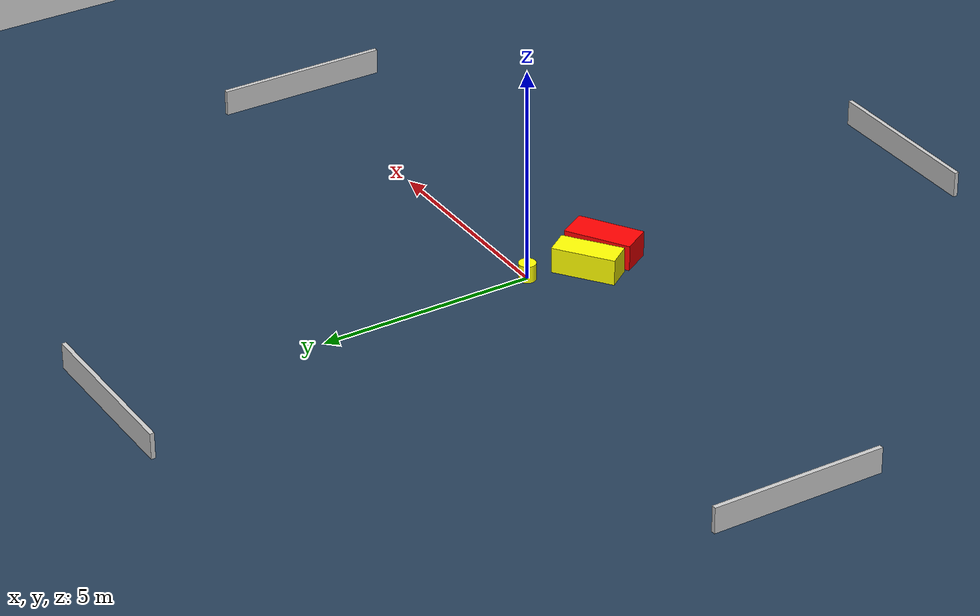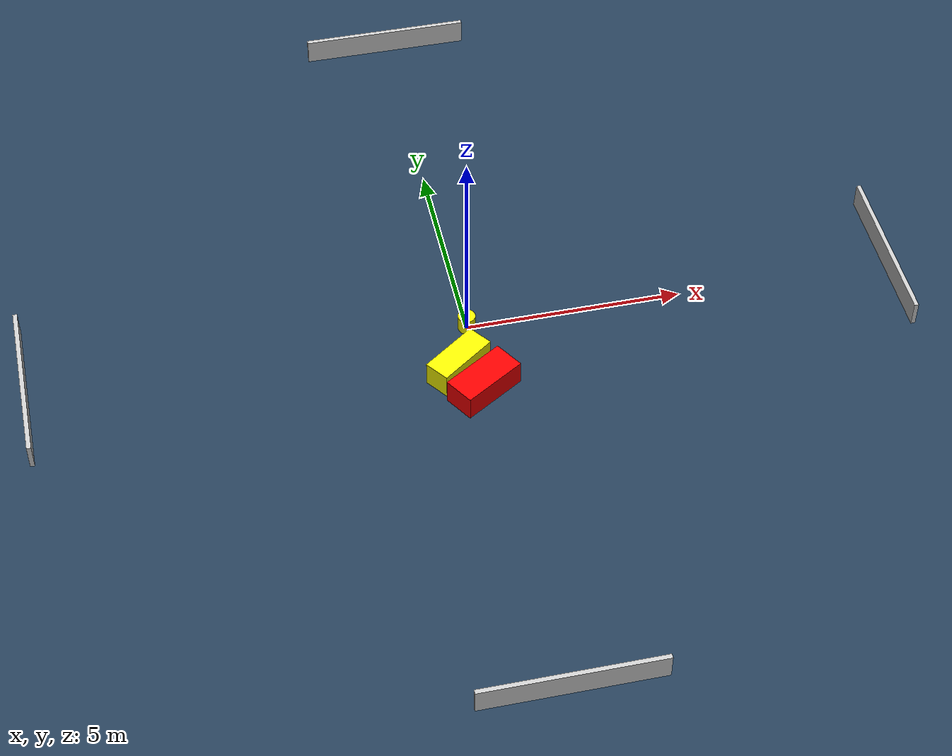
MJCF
<?xml version="1.0" ?>
<mujoco model="generated_environment">
  <option timestep="0.01" integrator="RK4" cone="elliptic"/>
  <default>
    <geom density="1"/>
  </default>
  <asset>
    <texture builtin="gradient" height="3072" name="skybox" rgb1="0.3 0.5 0.7" rgb2="0 0 0" type="skybox" width="512"/>
    <texture builtin="checker" height="300" name="groundplane" rgb1="0.2 0.3 0.4" rgb2="0.1 0.2 0.3" type="2d" width="300"/>
    <material name="groundplane" reflectance="0.2" texrepeat="5 5" texture="groundplane"/>
  </asset>
  <worldbody>
    <light dir="0 0 -1" directional="true" pos="0 0 1.5"/>
    <geom condim="3" friction="0.5 0.005 0.001" material="groundplane" name="floor" pos="0 0 0" size="0 0 0.05" type="plane"/>
    <body name="walls">
      <geom name="wall_1" condim="4" pos="-10.0 0.0 0.3" rgba="0.800000011920929 0.800000011920929 0.800000011920929 1.0" size="0.05 2.0 0.3" type="box"/>
      <geom name="wall_2" condim="4" pos="10.0 0.0 0.3" rgba="0.800000011920929 0.800000011920929 0.800000011920929 1.0" size="0.05 2.0 0.3" type="box"/>
      <geom name="wall_3" condim="4" pos="0.0 -10.0 0.3" rgba="0.800000011920929 0.800000011920929 0.800000011920929 1.0" size="2.0 0.05 0.3" type="box"/>
      <geom name="wall_4" condim="4" pos="0.0 10.0 0.3" rgba="0.800000011920929 0.800000011920929 0.800000011920929 1.0" size="2.0 0.05 0.3" type="box"/>
    </body>
    <body name="robot">
      <joint name="joint_x" type="slide" pos="0 0 0" axis="1 0 0"/>
      <joint name="joint_y" type="slide" pos="0 0 0" axis="0 1 0"/>
      <geom name="robot" type="cylinder" pos="0.0 0.0 0.2" size="0.2 0.2 0.0" mass="5.0" friction="1.0 0.005 0.0001" condim="4" rgba="1.0 1.0 0.0 1.0"/>
    </body>
    <body name="obstacle_1_movable">
      <geom name="obstacle_1_movable" condim="4" pos="-0.45228855160006276 -1.2519439821336982 0.3" euler="0 0 216.06127535556223" friction="0.0 0.005 0.001" rgba="1.0 1.0 0.0 1.0" size="0.7295180595483624 0.3037072582099209 0.3" type="box" mass="0.1"/>
      <joint type="free"/>
    </body>
    <body name="obstacle_2_static">
      <geom name="obstacle_2_static" condim="4" pos="-0.025453759592551667 -1.9425951034484246 0.3" euler="0 0 211.81599202181908" friction="0.0 0.005 0.001" rgba="1.0 0.0 0.0 1.0" size="0.7784547297138074 0.3666557615712914 0.3" type="box"/>
    </body>
  </worldbody>
  <actuator>
    <motor name="actuator_x" joint="joint_x" gear="1" ctrlrange="-1 1"/>
    <motor name="actuator_y" joint="joint_y" gear="1" ctrlrange="-1 1"/>
  </actuator>
</mujoco>
